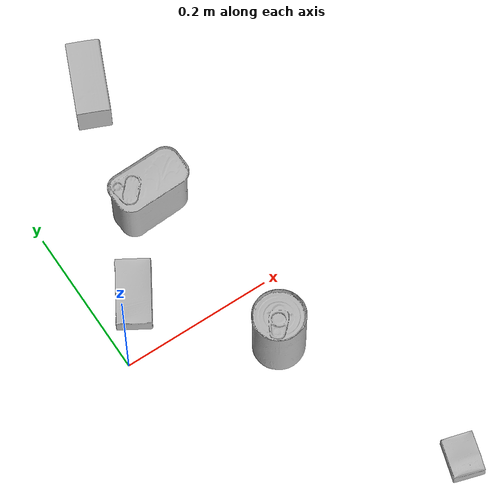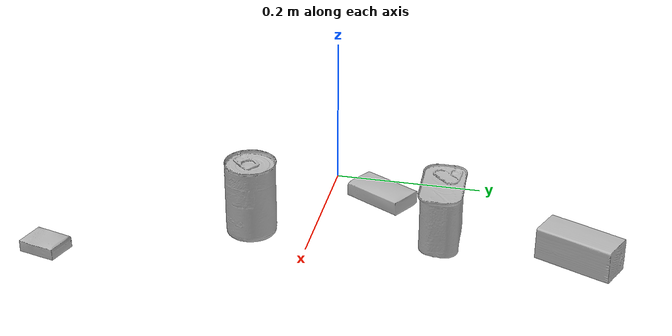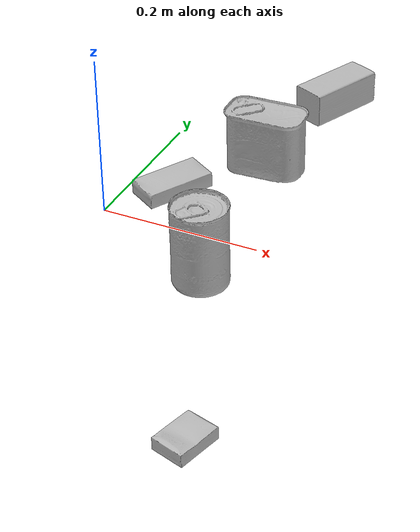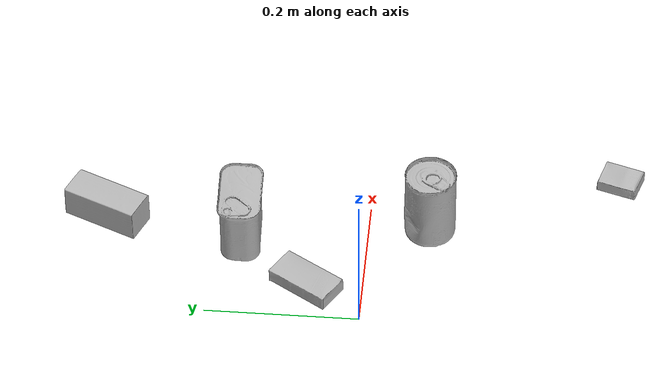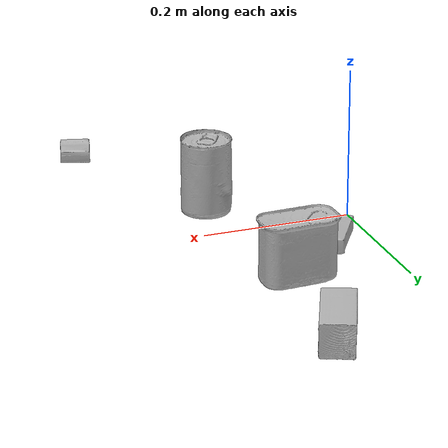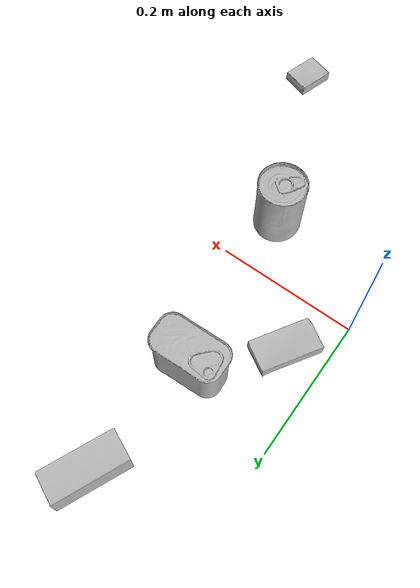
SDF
<sdf version="1.4">
  <world name="default">
    <light name="light1" type="point">
      <pose>0 0 1 0 0 0</pose>
      <diffuse>3 3 3 1</diffuse>
      <specular>3 3 3 1</specular>
    </light>
    <light name="light2" type="point">
      <pose>0 0.5 2 0 0 0</pose>
      <diffuse>1 1 1 1</diffuse>
      <specular>1 1 1 1</specular>
    </light>
    <light name="light3" type="point">
      <pose>0 0.5 2 0 0 0</pose>
      <diffuse>3 3 3 1</diffuse>
      <specular>3 3 3 1</specular>
    </light>
    <scene>
      <ambient>0.7 0.7 0.7</ambient>
    </scene>
    <model name="box1">
      <link name="link_box1">
        <collision name="default">
          <geometry>
            <mesh>
              <uri>model://sugar_box/collision_meshes/collision.obj</uri>
              <scale>0.5 0.5 0.5</scale>
            </mesh>
          </geometry>
          <surface>
            <friction>
              <ode>
                <mu>0.5</mu>
                <mu2>0.5</mu2>
              </ode>
            </friction>
          <contact>
        <ode>
            <max_vel>0</max_vel>
            <min_depth>0.0001</min_depth>
            <kp>1e8</kp>
        </ode>
    </contact></surface>
        </collision>
        <visual name="default">
          <geometry>
            <mesh>
              <uri>model://sugar_box/visual_meshes/visual.dae</uri>
              <scale>0.5 0.5 0.5</scale>
            </mesh>
          </geometry>
        </visual>
        <inertial>
          <mass>0.048160675913095474</mass>
          <pose>0.0005171863595023751 1.924554817378521e-05 -0.00018182402709499002 -0.0004046258638373534 0.0010506635215919557 0.0026153787891515894</pose>
          <inertia>
            <ixx>1.0031835e-05</ixx>
            <iyy>3.2424945e-05</iyy>
            <izz>3.8816543e-05</izz>
            <ixy>0</ixy>
            <ixz>0</ixz>
            <iyz>0</iyz>
          </inertia>
        </inertial>
      </link>
      <pose>0.05403304472565651 0.07303261011838913 0.011399299837648869 0.0007753227146570417 -0.023433290188011255 1.021755897600398</pose>
    </model>
    <model name="box2">
      <link name="link_box2">
        <collision name="default">
          <geometry>
            <mesh>
              <uri>model://cracker_box/collision_meshes/collision.obj</uri>
              <scale>0.25 0.25 0.25</scale>
            </mesh>
          </geometry>
          <surface>
            <friction>
              <ode>
                <mu>0.5</mu>
                <mu2>0.5</mu2>
              </ode>
            </friction>
          <contact>
        <ode>
            <max_vel>0</max_vel>
            <min_depth>0.0001</min_depth>
            <kp>1e8</kp>
        </ode>
    </contact></surface>
        </collision>
        <visual name="default">
          <geometry>
            <mesh>
              <uri>model://cracker_box/visual_meshes/visual.dae</uri>
              <scale>0.25 0.25 0.25</scale>
            </mesh>
          </geometry>
        </visual>
        <inertial>
          <mass>0.047952666878700256</mass>
          <pose>0.00023660370789002627 6.358561950037256e-05 -0.0004257383698131889 -0.0003162075404896153 -0.011106488669099107 0.002546795234185617</pose>
          <inertia>
            <ixx>7.623136e-06</ixx>
            <iyy>1.2587296e-05</iyy>
            <izz>1.7963224e-05</izz>
            <ixy>0</ixy>
            <ixz>0</ixz>
            <iyz>0</iyz>
          </inertia>
        </inertial>
      </link>
      <pose>0.272474467754364 -0.32475656270980835 0.009120450355112553 -0.011787884249109612 -0.007367199687825097 1.2795963170205753</pose>
    </model>
    <model name="box3">
      <link name="link_box3">
        <collision name="default">
          <geometry>
            <mesh>
              <uri>model://wood_block/collision_meshes/collision.obj</uri>
              <scale>0.5 0.5 0.5</scale>
            </mesh>
          </geometry>
          <surface>
            <friction>
              <ode>
                <mu>0.5</mu>
                <mu2>0.5</mu2>
              </ode>
            </friction>
          <contact>
        <ode>
            <max_vel>0</max_vel>
            <min_depth>0.0001</min_depth>
            <kp>1e8</kp>
        </ode>
    </contact></surface>
        </collision>
        <visual name="default">
          <geometry>
            <mesh>
              <uri>model://wood_block/visual_meshes/visual.dae</uri>
              <scale>0.5 0.5 0.5</scale>
            </mesh>
          </geometry>
        </visual>
        <inertial>
          <mass>0.27162742614746094</mass>
          <pose>-2.9066577553749084e-06 -0.000285404734313488 0.00013204291462898254 -0.05220780121661256 -0.005192696561201931 -0.006861379819720353</pose>
          <inertia>
            <ixx>9.086965e-05</ixx>
            <iyy>0.00028705722</iyy>
            <izz>0.0002859835</izz>
            <ixy>0</ixy>
            <ixz>0</ixz>
            <iyz>0</iyz>
          </inertia>
        </inertial>
      </link>
      <pose>0.159429669380188 0.34430429339408875 0.022629259154200554 -0.005208563453699519 0.005718711029257116 1.1601543788302962</pose>
    </model>
    <model name="can1">
      <link name="link_can1">
        <collision name="default">
          <geometry>
            <mesh>
              <uri>model://tomato_soup_can/collision_meshes/collision.obj</uri>
              <scale>1.0 1.0 1.0</scale>
            </mesh>
          </geometry>
          <surface>
            <friction>
              <ode>
                <mu>0.5</mu>
                <mu2>0.5</mu2>
              </ode>
            </friction>
          <contact>
        <ode>
            <max_vel>0</max_vel>
            <min_depth>0.0001</min_depth>
            <kp>1e8</kp>
        </ode>
    </contact></surface>
        </collision>
        <visual name="default">
          <geometry>
            <mesh>
              <uri>model://tomato_soup_can/visual_meshes/visual.dae</uri>
              <scale>1.0 1.0 1.0</scale>
            </mesh>
          </geometry>
        </visual>
        <inertial>
          <mass>0.33680883049964905</mass>
          <pose>0.0001265227037947625 0.0001080552683561109 -0.0017973986687138677 0.007020065933643549 0.0004229964102555597 -0.009903579397299064</pose>
          <inertia>
            <ixx>0.00036928226</ixx>
            <iyy>0.0003671481</iyy>
            <izz>0.00019139561</izz>
            <ixy>0</ixy>
            <ixz>0</ixz>
            <iyz>0</iyz>
          </inertia>
        </inertial>
      </link>
      <pose>0.16814419627189636 -0.07963719218969345 0.051274023950099945 -4.877090576984152e-07 -8.215779727528844e-07 -0.9519879327317975</pose>
    </model>
    <model name="can2">
      <link name="link_can2">
        <collision name="default">
          <geometry>
            <mesh>
              <uri>model://potted_meat_can/collision_meshes/collision.obj</uri>
              <scale>1.0 1.0 1.0</scale>
            </mesh>
          </geometry>
          <surface>
            <friction>
              <ode>
                <mu>0.5</mu>
                <mu2>0.5</mu2>
              </ode>
            </friction>
          <contact>
        <ode>
            <max_vel>0</max_vel>
            <min_depth>0.0001</min_depth>
            <kp>1e8</kp>
        </ode>
    </contact></surface>
        </collision>
        <visual name="default">
          <geometry>
            <mesh>
              <uri>model://potted_meat_can/visual_meshes/visual.dae</uri>
              <scale>1.0 1.0 1.0</scale>
            </mesh>
          </geometry>
        </visual>
        <inertial>
          <mass>0.5009446144104004</mass>
          <pose>0.00022888141393195838 -5.9891164710279554e-05 -0.0006367440801113844 -0.028093347044227477 -0.007232596108467961 0.015406262357490775</pose>
          <inertia>
            <ixx>0.0006444129</ixx>
            <iyy>0.0003915297</iyy>
            <izz>0.00046868768</izz>
            <ixy>0</ixy>
            <ixz>0</ixz>
            <iyz>0</iyz>
          </inertia>
        </inertial>
      </link>
      <pose>0.137642964720726 0.16564595699310303 0.04212800785899162 -2.5045464816662696e-08 -5.644360671232886e-07 -1.5414171855538679</pose>
    </model>
  <physics type="ode">
      <max_contacts>50</max_contacts>
      <ode>
        <solver>
          <type>quick</type>
          <iters>75</iters>
        </solver>
        <constraints>
          <contact_max_correcting_vel>0</contact_max_correcting_vel>
          <contact_surface_layer>0</contact_surface_layer>
        </constraints>
      </ode>
    </physics></world>
</sdf>
